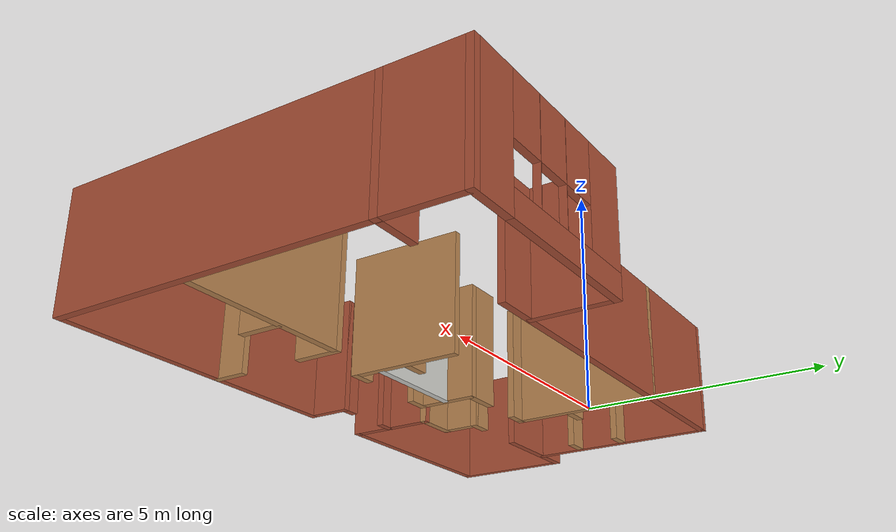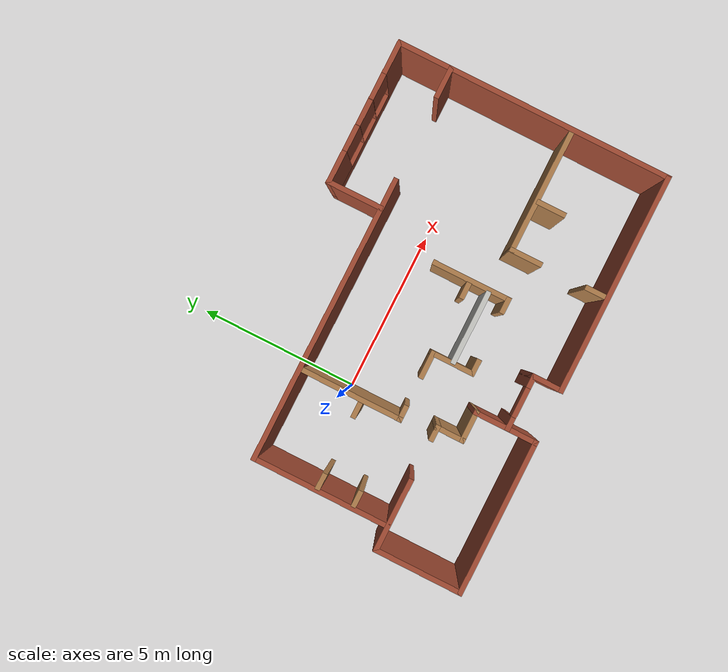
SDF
<?xml version='1.0'?>
<sdf version='1.6'>
  <model name='building'>
    <pose frame=''>2.885 -1.15 0 0 -0 0</pose>
    <link name='Wall_0'>
      <collision name='Wall_0_Collision'>
        <geometry>
          <box>
            <size>2.25 0.15 2.5</size>
          </box>
        </geometry>
        <pose frame=''>0 0 1.25 0 -0 0</pose>
      </collision>
      <visual name='Wall_0_Visual'>
        <pose frame=''>0 0 1.25 0 -0 0</pose>
        <geometry>
          <box>
            <size>2.25 0.15 2.5</size>
          </box>
        </geometry>
        <material>
          <script>
            <uri>file://media/materials/scripts/gazebo.material</uri>
            <name>Gazebo/Bricks</name>
          </script>
          <ambient>1 1 1 1</ambient>
        </material>
        <meta>
          <layer>0</layer>
        </meta>
      </visual>
      <pose frame=''>-5.355 -1.58 0 0 -0 3.14159</pose>
    </link>
    <link name='Wall_1'>
      <collision name='Wall_1_Collision'>
        <geometry>
          <box>
            <size>2.75 0.15 2.5</size>
          </box>
        </geometry>
        <pose frame=''>0 0 1.25 0 -0 0</pose>
      </collision>
      <visual name='Wall_1_Visual'>
        <pose frame=''>0 0 1.25 0 -0 0</pose>
        <geometry>
          <box>
            <size>2.75 0.15 2.5</size>
          </box>
        </geometry>
        <material>
          <script>
            <uri>file://media/materials/scripts/gazebo.material</uri>
            <name>Gazebo/Bricks</name>
          </script>
          <ambient>1 1 1 1</ambient>
        </material>
        <meta>
          <layer>0</layer>
        </meta>
      </visual>
      <pose frame=''>-6.405 -2.88 0 0 0 -1.5708</pose>
    </link>
    <link name='Wall_11'>
      <collision name='Wall_11_Collision'>
        <geometry>
          <box>
            <size>0.5 0.15 2.5</size>
          </box>
        </geometry>
        <pose frame=''>0 0 1.25 0 -0 0</pose>
      </collision>
      <visual name='Wall_11_Visual'>
        <pose frame=''>0 0 1.25 0 -0 0</pose>
        <geometry>
          <box>
            <size>0.5 0.15 2.5</size>
          </box>
        </geometry>
        <material>
          <script>
            <uri>file://media/materials/scripts/gazebo.material</uri>
            <name>Gazebo/Wood</name>
          </script>
          <ambient>1 1 1 1</ambient>
        </material>
        <meta>
          <layer>0</layer>
        </meta>
      </visual>
      <pose frame=''>-5.42054 0.610454 0 0 -0 0</pose>
    </link>
    <link name='Wall_13'>
      <collision name='Wall_13_Collision'>
        <geometry>
          <box>
            <size>3.25 0.15 2.5</size>
          </box>
        </geometry>
        <pose frame=''>0 0 1.25 0 -0 0</pose>
      </collision>
      <visual name='Wall_13_Visual'>
        <pose frame=''>0 0 1.25 0 -0 0</pose>
        <geometry>
          <box>
            <size>3.25 0.15 2.5</size>
          </box>
        </geometry>
        <material>
          <script>
            <uri>file://media/materials/scripts/gazebo.material</uri>
            <name>Gazebo/Wood</name>
          </script>
          <ambient>1 1 1 1</ambient>
        </material>
        <meta>
          <layer>0</layer>
        </meta>
      </visual>
      <pose frame=''>-2.915 1 0 0 0 -1.5708</pose>
    </link>
    <link name='Wall_14'>
      <collision name='Wall_14_Collision'>
        <geometry>
          <box>
            <size>0.5 0.15 2.5</size>
          </box>
        </geometry>
        <pose frame=''>0 0 1.25 0 -0 0</pose>
      </collision>
      <visual name='Wall_14_Visual'>
        <pose frame=''>0 0 1.25 0 -0 0</pose>
        <geometry>
          <box>
            <size>0.5 0.15 2.5</size>
          </box>
        </geometry>
        <material>
          <script>
            <uri>file://media/materials/scripts/gazebo.material</uri>
            <name>Gazebo/Wood</name>
          </script>
          <ambient>1 1 1 1</ambient>
        </material>
        <meta>
          <layer>0</layer>
        </meta>
      </visual>
      <pose frame=''>-2.74 -0.55 0 0 -0 0</pose>
    </link>
    <link name='Wall_16'>
      <collision name='Wall_16_Collision'>
        <geometry>
          <box>
            <size>0.5 0.15 2.5</size>
          </box>
        </geometry>
        <pose frame=''>0 0 1.25 0 -0 0</pose>
      </collision>
      <visual name='Wall_16_Visual'>
        <pose frame=''>0 0 1.25 0 -0 0</pose>
        <geometry>
          <box>
            <size>0.5 0.15 2.5</size>
          </box>
        </geometry>
        <material>
          <script>
            <uri>file://media/materials/scripts/gazebo.material</uri>
            <name>Gazebo/Wood</name>
          </script>
          <ambient>1 1 1 1</ambient>
        </material>
        <meta>
          <layer>0</layer>
        </meta>
      </visual>
      <pose frame=''>-5.39507 -0.487783 0 0 -0 0</pose>
    </link>
    <link name='Wall_18'>
      <collision name='Wall_18_Collision'>
        <geometry>
          <box>
            <size>0.5 0.15 2.5</size>
          </box>
        </geometry>
        <pose frame=''>0 0 1.25 0 -0 0</pose>
      </collision>
      <visual name='Wall_18_Visual'>
        <pose frame=''>0 0 1.25 0 -0 0</pose>
        <geometry>
          <box>
            <size>0.5 0.15 2.5</size>
          </box>
        </geometry>
        <material>
          <script>
            <uri>file://media/materials/scripts/gazebo.material</uri>
            <name>Gazebo/Wood</name>
          </script>
          <ambient>1 1 1 1</ambient>
        </material>
        <meta>
          <layer>0</layer>
        </meta>
      </visual>
      <pose frame=''>-3.22609 0.62703 0 0 -0 3.14159</pose>
    </link>
    <link name='Wall_2'>
      <collision name='Wall_2_Collision'>
        <geometry>
          <box>
            <size>4.75 0.15 2.5</size>
          </box>
        </geometry>
        <pose frame=''>0 0 1.25 0 -0 0</pose>
      </collision>
      <visual name='Wall_2_Visual'>
        <pose frame=''>0 0 1.25 0 -0 0</pose>
        <geometry>
          <box>
            <size>4.75 0.15 2.5</size>
          </box>
        </geometry>
        <material>
          <script>
            <uri>file://media/materials/scripts/gazebo.material</uri>
            <name>Gazebo/Bricks</name>
          </script>
          <ambient>1 1 1 1</ambient>
        </material>
        <meta>
          <layer>0</layer>
        </meta>
      </visual>
      <pose frame=''>-4.105 -4.18 0 0 -0 0</pose>
    </link>
    <link name='Wall_20'>
      <pose frame=''>-0.995 -3.32 0 0 -0 0</pose>
      <visual name='Wall_20_Visual_0'>
        <pose frame=''>-0.666369 0 1.25 0 -0 0</pose>
        <geometry>
          <box>
            <size>0.417262 0.15 2.5</size>
          </box>
        </geometry>
        <material>
          <script>
            <uri>file://media/materials/scripts/gazebo.material</uri>
            <name>Gazebo/Bricks</name>
          </script>
          <ambient>1 1 1 1</ambient>
        </material>
        <meta>
          <layer>0</layer>
        </meta>
      </visual>
      <collision name='Wall_20_Collision_0'>
        <geometry>
          <box>
            <size>0.417262 0.15 2.5</size>
          </box>
        </geometry>
        <pose frame=''>-0.666369 0 1.25 0 -0 0</pose>
      </collision>
      <visual name='Wall_20_Visual_1'>
        <pose frame=''>0.658631 0 1.25 0 -0 0</pose>
        <geometry>
          <box>
            <size>0.432738 0.15 2.5</size>
          </box>
        </geometry>
        <material>
          <script>
            <uri>file://media/materials/scripts/gazebo.material</uri>
            <name>Gazebo/Bricks</name>
          </script>
          <ambient>1 1 1 1</ambient>
        </material>
        <meta>
          <layer>0</layer>
        </meta>
      </visual>
      <collision name='Wall_20_Collision_1'>
        <geometry>
          <box>
            <size>0.432738 0.15 2.5</size>
          </box>
        </geometry>
        <pose frame=''>0.658631 0 1.25 0 -0 0</pose>
      </collision>
      <visual name='Wall_20_Visual_2'>
        <pose frame=''>-0.007738 0 2.25 0 -0 0</pose>
        <geometry>
          <box>
            <size>0.9 0.15 0.5</size>
          </box>
        </geometry>
        <material>
          <script>
            <uri>file://media/materials/scripts/gazebo.material</uri>
            <name>Gazebo/Bricks</name>
          </script>
          <ambient>1 1 1 1</ambient>
        </material>
        <meta>
          <layer>0</layer>
        </meta>
      </visual>
      <collision name='Wall_20_Collision_2'>
        <geometry>
          <box>
            <size>0.9 0.15 0.5</size>
          </box>
        </geometry>
        <pose frame=''>-0.007738 0 2.25 0 -0 0</pose>
      </collision>
    </link>
    <link name='Wall_21'>
      <collision name='Wall_21_Collision'>
        <geometry>
          <box>
            <size>1 0.15 2.5</size>
          </box>
        </geometry>
        <pose frame=''>0 0 1.25 0 -0 0</pose>
      </collision>
      <visual name='Wall_21_Visual'>
        <pose frame=''>0 0 1.25 0 -0 0</pose>
        <geometry>
          <box>
            <size>1 0.15 2.5</size>
          </box>
        </geometry>
        <material>
          <script>
            <uri>file://media/materials/scripts/gazebo.material</uri>
            <name>Gazebo/Bricks</name>
          </script>
          <ambient>1 1 1 1</ambient>
        </material>
        <meta>
          <layer>0</layer>
        </meta>
      </visual>
      <pose frame=''>-0.195 -3.745 0 0 0 -1.5708</pose>
    </link>
    <link name='Wall_22'>
      <collision name='Wall_22_Collision'>
        <geometry>
          <box>
            <size>6.75 0.15 2.5</size>
          </box>
        </geometry>
        <pose frame=''>0 0 1.25 0 -0 0</pose>
      </collision>
      <visual name='Wall_22_Visual'>
        <pose frame=''>0 0 1.25 0 -0 0</pose>
        <geometry>
          <box>
            <size>6.75 0.15 2.5</size>
          </box>
        </geometry>
        <material>
          <script>
            <uri>file://media/materials/scripts/gazebo.material</uri>
            <name>Gazebo/Bricks</name>
          </script>
          <ambient>1 1 1 1</ambient>
        </material>
        <meta>
          <layer>0</layer>
        </meta>
      </visual>
      <pose frame=''>3.105 -4.17 0 0 -0 0</pose>
    </link>
    <link name='Wall_23'>
      <collision name='Wall_23_Collision'>
        <geometry>
          <box>
            <size>8.5 0.15 2.5</size>
          </box>
        </geometry>
        <pose frame=''>0 0 1.25 0 -0 0</pose>
      </collision>
      <visual name='Wall_23_Visual'>
        <pose frame=''>0 0 1.25 0 -0 0</pose>
        <geometry>
          <box>
            <size>8.5 0.15 2.5</size>
          </box>
        </geometry>
        <material>
          <script>
            <uri>file://media/materials/scripts/gazebo.material</uri>
            <name>Gazebo/Bricks</name>
          </script>
          <ambient>1 1 1 1</ambient>
        </material>
        <meta>
          <layer>0</layer>
        </meta>
      </visual>
      <pose frame=''>6.405 0.005 0 0 -0 1.5708</pose>
    </link>
    <link name='Wall_25'>
      <pose frame=''>4.23 4.18 0 0 -0 3.14159</pose>
      <visual name='Wall_25_Visual_0'>
        <pose frame=''>-1.7302 0 1.25 0 -0 0</pose>
        <geometry>
          <box>
            <size>1.0396 0.15 2.5</size>
          </box>
        </geometry>
        <material>
          <script>
            <uri>file://media/materials/scripts/gazebo.material</uri>
            <name>Gazebo/Bricks</name>
          </script>
          <ambient>1 1 1 1</ambient>
        </material>
        <meta>
          <layer>0</layer>
        </meta>
      </visual>
      <collision name='Wall_25_Collision_0'>
        <geometry>
          <box>
            <size>1.0396 0.15 2.5</size>
          </box>
        </geometry>
        <pose frame=''>-1.7302 0 1.25 0 -0 0</pose>
      </collision>
      <visual name='Wall_25_Visual_1'>
        <pose frame=''>0.519799 0 0.25 0 -0 0</pose>
        <geometry>
          <box>
            <size>3.4604 0.15 0.5</size>
          </box>
        </geometry>
        <material>
          <script>
            <uri>file://media/materials/scripts/gazebo.material</uri>
            <name>Gazebo/Bricks</name>
          </script>
          <ambient>1 1 1 1</ambient>
        </material>
        <meta>
          <layer>0</layer>
        </meta>
      </visual>
      <collision name='Wall_25_Collision_1'>
        <geometry>
          <box>
            <size>3.4604 0.15 0.5</size>
          </box>
        </geometry>
        <pose frame=''>0.519799 0 0.25 0 -0 0</pose>
      </collision>
      <visual name='Wall_25_Visual_2'>
        <pose frame=''>-0.403907 0 1.5 0 -0 0</pose>
        <geometry>
          <box>
            <size>0.01299 0.15 2</size>
          </box>
        </geometry>
        <material>
          <script>
            <uri>file://media/materials/scripts/gazebo.material</uri>
            <name>Gazebo/Bricks</name>
          </script>
          <ambient>1 1 1 1</ambient>
        </material>
        <meta>
          <layer>0</layer>
        </meta>
      </visual>
      <collision name='Wall_25_Collision_2'>
        <geometry>
          <box>
            <size>0.01299 0.15 2</size>
          </box>
        </geometry>
        <pose frame=''>-0.403907 0 1.5 0 -0 0</pose>
      </collision>
      <visual name='Wall_25_Visual_3'>
        <pose frame=''>0.406241 0 1.5 0 -0 0</pose>
        <geometry>
          <box>
            <size>0.007305 0.15 2</size>
          </box>
        </geometry>
        <material>
          <script>
            <uri>file://media/materials/scripts/gazebo.material</uri>
            <name>Gazebo/Bricks</name>
          </script>
          <ambient>1 1 1 1</ambient>
        </material>
        <meta>
          <layer>0</layer>
        </meta>
      </visual>
      <collision name='Wall_25_Collision_3'>
        <geometry>
          <box>
            <size>0.007305 0.15 2</size>
          </box>
        </geometry>
        <pose frame=''>0.406241 0 1.5 0 -0 0</pose>
      </collision>
      <visual name='Wall_25_Visual_4'>
        <pose frame=''>1.72995 0 1.5 0 -0 0</pose>
        <geometry>
          <box>
            <size>1.04011 0.15 2</size>
          </box>
        </geometry>
        <material>
          <script>
            <uri>file://media/materials/scripts/gazebo.material</uri>
            <name>Gazebo/Bricks</name>
          </script>
          <ambient>1 1 1 1</ambient>
        </material>
        <meta>
          <layer>0</layer>
        </meta>
      </visual>
      <collision name='Wall_25_Collision_4'>
        <geometry>
          <box>
            <size>1.04011 0.15 2</size>
          </box>
        </geometry>
        <pose frame=''>1.72995 0 1.5 0 -0 0</pose>
      </collision>
      <visual name='Wall_25_Visual_5'>
        <pose frame=''>-0.810402 0 1.9 0 -0 0</pose>
        <geometry>
          <box>
            <size>0.8 0.15 1.2</size>
          </box>
        </geometry>
        <material>
          <script>
            <uri>file://media/materials/scripts/gazebo.material</uri>
            <name>Gazebo/Bricks</name>
          </script>
          <ambient>1 1 1 1</ambient>
        </material>
        <meta>
          <layer>0</layer>
        </meta>
      </visual>
      <collision name='Wall_25_Collision_5'>
        <geometry>
          <box>
            <size>0.8 0.15 1.2</size>
          </box>
        </geometry>
        <pose frame=''>-0.810402 0 1.9 0 -0 0</pose>
      </collision>
      <visual name='Wall_25_Visual_6'>
        <pose frame=''>0.002588 0 1.9 0 -0 0</pose>
        <geometry>
          <box>
            <size>0.8 0.15 1.2</size>
          </box>
        </geometry>
        <material>
          <script>
            <uri>file://media/materials/scripts/gazebo.material</uri>
            <name>Gazebo/Bricks</name>
          </script>
          <ambient>1 1 1 1</ambient>
        </material>
        <meta>
          <layer>0</layer>
        </meta>
      </visual>
      <collision name='Wall_25_Collision_6'>
        <geometry>
          <box>
            <size>0.8 0.15 1.2</size>
          </box>
        </geometry>
        <pose frame=''>0.002588 0 1.9 0 -0 0</pose>
      </collision>
      <visual name='Wall_25_Visual_7'>
        <pose frame=''>0.809894 0 1.9 0 -0 0</pose>
        <geometry>
          <box>
            <size>0.8 0.15 1.2</size>
          </box>
        </geometry>
        <material>
          <script>
            <uri>file://media/materials/scripts/gazebo.material</uri>
            <name>Gazebo/Bricks</name>
          </script>
          <ambient>1 1 1 1</ambient>
        </material>
        <meta>
          <layer>0</layer>
        </meta>
      </visual>
      <collision name='Wall_25_Collision_7'>
        <geometry>
          <box>
            <size>0.8 0.15 1.2</size>
          </box>
        </geometry>
        <pose frame=''>0.809894 0 1.9 0 -0 0</pose>
      </collision>
    </link>
    <link name='Wall_26'>
      <collision name='Wall_26_Collision'>
        <geometry>
          <box>
            <size>1.75 0.15 2.5</size>
          </box>
        </geometry>
        <pose frame=''>0 0 1.25 0 -0 0</pose>
      </collision>
      <visual name='Wall_26_Visual'>
        <pose frame=''>0 0 1.25 0 -0 0</pose>
        <geometry>
          <box>
            <size>1.75 0.15 2.5</size>
          </box>
        </geometry>
        <material>
          <script>
            <uri>file://media/materials/scripts/gazebo.material</uri>
            <name>Gazebo/Bricks</name>
          </script>
          <ambient>1 1 1 1</ambient>
        </material>
        <meta>
          <layer>0</layer>
        </meta>
      </visual>
      <pose frame=''>2.055 3.38 0 0 0 -1.5708</pose>
    </link>
    <link name='Wall_28'>
      <collision name='Wall_28_Collision'>
        <geometry>
          <box>
            <size>1 0.15 2.5</size>
          </box>
        </geometry>
        <pose frame=''>0 0 1.25 0 -0 0</pose>
      </collision>
      <visual name='Wall_28_Visual'>
        <pose frame=''>0 0 1.25 0 -0 0</pose>
        <geometry>
          <box>
            <size>1 0.15 2.5</size>
          </box>
        </geometry>
        <material>
          <script>
            <uri>file://media/materials/scripts/gazebo.material</uri>
            <name>Gazebo/Bricks</name>
          </script>
          <ambient>1 1 1 1</ambient>
        </material>
        <meta>
          <layer>0</layer>
        </meta>
      </visual>
      <pose frame=''>5.98 2.58 0 0 -0 3.14159</pose>
    </link>
    <link name='Wall_3'>
      <collision name='Wall_3_Collision'>
        <geometry>
          <box>
            <size>1.98 0.15 2.5</size>
          </box>
        </geometry>
        <pose frame=''>0 0 1.25 0 -0 0</pose>
      </collision>
      <visual name='Wall_3_Visual'>
        <pose frame=''>0 0 1.25 0 -0 0</pose>
        <geometry>
          <box>
            <size>1.98 0.15 2.5</size>
          </box>
        </geometry>
        <material>
          <script>
            <uri>file://media/materials/scripts/gazebo.material</uri>
            <name>Gazebo/Bricks</name>
          </script>
          <ambient>1 1 1 1</ambient>
        </material>
        <meta>
          <layer>0</layer>
        </meta>
      </visual>
      <pose frame=''>-1.805 -3.265 0 0 -0 1.5708</pose>
    </link>
    <link name='Wall_30'>
      <collision name='Wall_30_Collision'>
        <geometry>
          <box>
            <size>0.75 0.15 2.5</size>
          </box>
        </geometry>
        <pose frame=''>0 0 1.25 0 -0 0</pose>
      </collision>
      <visual name='Wall_30_Visual'>
        <pose frame=''>0 0 1.25 0 -0 0</pose>
        <geometry>
          <box>
            <size>0.75 0.15 2.5</size>
          </box>
        </geometry>
        <material>
          <script>
            <uri>file://media/materials/scripts/gazebo.material</uri>
            <name>Gazebo/Wood</name>
          </script>
          <ambient>1 1 1 1</ambient>
        </material>
        <meta>
          <layer>0</layer>
        </meta>
      </visual>
      <pose frame=''>2.655 -3.85 0 0 -0 1.5708</pose>
    </link>
    <link name='Wall_32'>
      <collision name='Wall_32_Collision'>
        <geometry>
          <box>
            <size>1 0.15 2.5</size>
          </box>
        </geometry>
        <pose frame=''>0 0 1.25 0 -0 0</pose>
      </collision>
      <visual name='Wall_32_Visual'>
        <pose frame=''>0 0 1.25 0 -0 0</pose>
        <geometry>
          <box>
            <size>1 0.15 2.5</size>
          </box>
        </geometry>
        <material>
          <script>
            <uri>file://media/materials/scripts/gazebo.material</uri>
            <name>Gazebo/Wood</name>
          </script>
          <ambient>1 1 1 1</ambient>
        </material>
        <meta>
          <layer>0</layer>
        </meta>
      </visual>
      <pose frame=''>2.655 -1.635 0 0 -0 1.5708</pose>
    </link>
    <link name='Wall_33'>
      <collision name='Wall_33_Collision'>
        <geometry>
          <box>
            <size>3.75 0.15 2.5</size>
          </box>
        </geometry>
        <pose frame=''>0 0 1.25 0 -0 0</pose>
      </collision>
      <visual name='Wall_33_Visual'>
        <pose frame=''>0 0 1.25 0 -0 0</pose>
        <geometry>
          <box>
            <size>3.75 0.15 2.5</size>
          </box>
        </geometry>
        <material>
          <script>
            <uri>file://media/materials/scripts/gazebo.material</uri>
            <name>Gazebo/Wood</name>
          </script>
          <ambient>1 1 1 1</ambient>
        </material>
        <meta>
          <layer>0</layer>
        </meta>
      </visual>
      <pose frame=''>4.455 -1.21 0 0 -0 0</pose>
    </link>
    <link name='Wall_35'>
      <collision name='Wall_35_Collision'>
        <geometry>
          <box>
            <size>0.9 0.15 2.5</size>
          </box>
        </geometry>
        <pose frame=''>0 0 1.25 0 -0 0</pose>
      </collision>
      <visual name='Wall_35_Visual'>
        <pose frame=''>0 0 1.25 0 -0 0</pose>
        <geometry>
          <box>
            <size>0.9 0.15 2.5</size>
          </box>
        </geometry>
        <material>
          <script>
            <uri>file://media/materials/scripts/gazebo.material</uri>
            <name>Gazebo/Wood</name>
          </script>
          <ambient>1 1 1 1</ambient>
        </material>
        <meta>
          <layer>0</layer>
        </meta>
      </visual>
      <pose frame=''>4.17527 -1.65644 0 0 0 -1.5708</pose>
    </link>
    <link name='Wall_37'>
      <collision name='Wall_37_Collision'>
        <geometry>
          <box>
            <size>0.846 0.15 2.5</size>
          </box>
        </geometry>
        <pose frame=''>0 0 1.25 0 -0 0</pose>
      </collision>
      <visual name='Wall_37_Visual'>
        <pose frame=''>0 0 1.25 0 -0 0</pose>
        <geometry>
          <box>
            <size>0.846 0.15 2.5</size>
          </box>
        </geometry>
        <material>
          <script>
            <uri>file://media/materials/scripts/gazebo.material</uri>
            <name>Gazebo/Wood</name>
          </script>
          <ambient>1 1 1 1</ambient>
        </material>
        <meta>
          <layer>0</layer>
        </meta>
      </visual>
      <pose frame=''>-1.233 -0.55 0 0 -0 0</pose>
    </link>
    <link name='Wall_38'>
      <collision name='Wall_38_Collision'>
        <geometry>
          <box>
            <size>1.36702 0.15 2.5</size>
          </box>
        </geometry>
        <pose frame=''>0 0 1.25 0 -0 0</pose>
      </collision>
      <visual name='Wall_38_Visual'>
        <pose frame=''>0 0 1.25 0 -0 0</pose>
        <geometry>
          <box>
            <size>1.36702 0.15 2.5</size>
          </box>
        </geometry>
        <material>
          <script>
            <uri>file://media/materials/scripts/gazebo.material</uri>
            <name>Gazebo/Wood</name>
          </script>
          <ambient>1 1 1 1</ambient>
        </material>
        <meta>
          <layer>0</layer>
        </meta>
      </visual>
      <pose frame=''>-0.885 -1.1585 0 0 0 -1.5708</pose>
    </link>
    <link name='Wall_39'>
      <collision name='Wall_39_Collision'>
        <geometry>
          <box>
            <size>0.509293 0.15 2.5</size>
          </box>
        </geometry>
        <pose frame=''>0 0 1.25 0 -0 0</pose>
      </collision>
      <visual name='Wall_39_Visual'>
        <pose frame=''>0 0 1.25 0 -0 0</pose>
        <geometry>
          <box>
            <size>0.509293 0.15 2.5</size>
          </box>
        </geometry>
        <material>
          <script>
            <uri>file://media/materials/scripts/gazebo.material</uri>
            <name>Gazebo/Wood</name>
          </script>
          <ambient>1 1 1 1</ambient>
        </material>
        <meta>
          <layer>0</layer>
        </meta>
      </visual>
      <pose frame=''>-0.705354 -1.7669 0 0 -0 0.000544</pose>
    </link>
    <link name='Wall_4'>
      <collision name='Wall_4_Collision'>
        <geometry>
          <box>
            <size>1 0.15 2.5</size>
          </box>
        </geometry>
        <pose frame=''>0 0 1.25 0 -0 0</pose>
      </collision>
      <visual name='Wall_4_Visual'>
        <pose frame=''>0 0 1.25 0 -0 0</pose>
        <geometry>
          <box>
            <size>1 0.15 2.5</size>
          </box>
        </geometry>
        <material>
          <script>
            <uri>file://media/materials/scripts/gazebo.material</uri>
            <name>Gazebo/Wood</name>
          </script>
          <ambient>1 1 1 1</ambient>
        </material>
        <meta>
          <layer>0</layer>
        </meta>
      </visual>
      <pose frame=''>-2.23 -2.35 0 0 -0 3.14159</pose>
    </link>
    <link name='Wall_41'>
      <collision name='Wall_41_Collision'>
        <geometry>
          <box>
            <size>0.5 0.15 2.5</size>
          </box>
        </geometry>
        <pose frame=''>0 0 1.25 0 -0 0</pose>
      </collision>
      <visual name='Wall_41_Visual'>
        <pose frame=''>0 0 1.25 0 -0 0</pose>
        <geometry>
          <box>
            <size>0.5 0.15 2.5</size>
          </box>
        </geometry>
        <material>
          <script>
            <uri>file://media/materials/scripts/gazebo.material</uri>
            <name>Gazebo/Wood</name>
          </script>
          <ambient>1 1 1 1</ambient>
        </material>
        <meta>
          <layer>0</layer>
        </meta>
      </visual>
      <pose frame=''>1.20247 -1.73362 0 0 -0 0</pose>
    </link>
    <link name='Wall_42'>
      <collision name='Wall_42_Collision'>
        <geometry>
          <box>
            <size>2.40993 0.15 2.5</size>
          </box>
        </geometry>
        <pose frame=''>0 0 1.25 0 -0 0</pose>
      </collision>
      <visual name='Wall_42_Visual'>
        <pose frame=''>0 0 1.25 0 -0 0</pose>
        <geometry>
          <box>
            <size>2.40993 0.15 2.5</size>
          </box>
        </geometry>
        <material>
          <script>
            <uri>file://media/materials/scripts/gazebo.material</uri>
            <name>Gazebo/Wood</name>
          </script>
          <ambient>1 1 1 1</ambient>
        </material>
        <meta>
          <layer>0</layer>
        </meta>
      </visual>
      <pose frame=''>1.38031 -0.603662 0 0 -0 1.57331</pose>
    </link>
    <link name='Wall_44'>
      <collision name='Wall_44_Collision'>
        <geometry>
          <box>
            <size>2.25 0.15 2.5</size>
          </box>
        </geometry>
        <pose frame=''>0 0 1.25 0 -0 0</pose>
      </collision>
      <visual name='Wall_44_Visual'>
        <pose frame=''>0 0 1.25 0 -0 0</pose>
        <geometry>
          <box>
            <size>2.25 0.15 2.5</size>
          </box>
        </geometry>
        <material>
          <script>
            <uri>file://media/materials/scripts/gazebo.material</uri>
            <name>Gazebo/CeilingTiled</name>
          </script>
          <ambient>1 1 1 1</ambient>
        </material>
        <meta>
          <layer>0</layer>
        </meta>
      </visual>
      <pose frame=''>0.223792 -1.16 0 0 -0 0</pose>
    </link>
    <link name='Wall_46'>
      <collision name='Wall_46_Collision'>
        <geometry>
          <box>
            <size>0.5 0.15 2.5</size>
          </box>
        </geometry>
        <pose frame=''>0 0 1.25 0 -0 0</pose>
      </collision>
      <visual name='Wall_46_Visual'>
        <pose frame=''>0 0 1.25 0 -0 0</pose>
        <geometry>
          <box>
            <size>0.5 0.15 2.5</size>
          </box>
        </geometry>
        <material>
          <script>
            <uri>file://media/materials/scripts/gazebo.material</uri>
            <name>Gazebo/Wood</name>
          </script>
          <ambient>1 1 1 1</ambient>
        </material>
        <meta>
          <layer>0</layer>
        </meta>
      </visual>
      <pose frame=''>1.06568 -0.560964 0 0 -0 3.14159</pose>
    </link>
    <link name='Wall_5'>
      <collision name='Wall_5_Collision'>
        <geometry>
          <box>
            <size>0.92 0.15 2.5</size>
          </box>
        </geometry>
        <pose frame=''>0 0 1.25 0 -0 0</pose>
      </collision>
      <visual name='Wall_5_Visual'>
        <pose frame=''>0 0 1.25 0 -0 0</pose>
        <geometry>
          <box>
            <size>0.92 0.15 2.5</size>
          </box>
        </geometry>
        <material>
          <script>
            <uri>file://media/materials/scripts/gazebo.material</uri>
            <name>Gazebo/Wood</name>
          </script>
          <ambient>1 1 1 1</ambient>
        </material>
        <meta>
          <layer>0</layer>
        </meta>
      </visual>
      <pose frame=''>-2.655 -1.965 0 0 -0 1.5708</pose>
    </link>
    <link name='Wall_6'>
      <collision name='Wall_6_Collision'>
        <geometry>
          <box>
            <size>0.493495 0.15 2.5</size>
          </box>
        </geometry>
        <pose frame=''>0 0 1.25 0 -0 0</pose>
      </collision>
      <visual name='Wall_6_Visual'>
        <pose frame=''>0 0 1.25 0 -0 0</pose>
        <geometry>
          <box>
            <size>0.493495 0.15 2.5</size>
          </box>
        </geometry>
        <material>
          <script>
            <uri>file://media/materials/scripts/gazebo.material</uri>
            <name>Gazebo/Wood</name>
          </script>
          <ambient>1 1 1 1</ambient>
        </material>
        <meta>
          <layer>0</layer>
        </meta>
      </visual>
      <pose frame=''>-2.8265 -1.58 0 0 -0 3.14159</pose>
    </link>
    <link name='Wall_8'>
      <collision name='Wall_8_Collision'>
        <geometry>
          <box>
            <size>4.25 0.15 2.5</size>
          </box>
        </geometry>
        <pose frame=''>0 0 1.25 0 -0 0</pose>
      </collision>
      <visual name='Wall_8_Visual'>
        <pose frame=''>0 0 1.25 0 -0 0</pose>
        <geometry>
          <box>
            <size>4.25 0.15 2.5</size>
          </box>
        </geometry>
        <material>
          <script>
            <uri>file://media/materials/scripts/gazebo.material</uri>
            <name>Gazebo/Bricks</name>
          </script>
          <ambient>1 1 1 1</ambient>
        </material>
        <meta>
          <layer>0</layer>
        </meta>
      </visual>
      <pose frame=''>-5.685 0.5 0 0 -0 1.5708</pose>
    </link>
    <link name='Wall_9'>
      <collision name='Wall_9_Collision'>
        <geometry>
          <box>
            <size>8.75 0.15 2.5</size>
          </box>
        </geometry>
        <pose frame=''>0 0 1.25 0 -0 0</pose>
      </collision>
      <visual name='Wall_9_Visual'>
        <pose frame=''>0 0 1.25 0 -0 0</pose>
        <geometry>
          <box>
            <size>8.75 0.15 2.5</size>
          </box>
        </geometry>
        <material>
          <script>
            <uri>file://media/materials/scripts/gazebo.material</uri>
            <name>Gazebo/Bricks</name>
          </script>
          <ambient>1 1 1 1</ambient>
        </material>
        <meta>
          <layer>0</layer>
        </meta>
      </visual>
      <pose frame=''>-1.385 2.55 0 0 -0 0</pose>
    </link>
    <static>1</static>
  </model>
</sdf>
